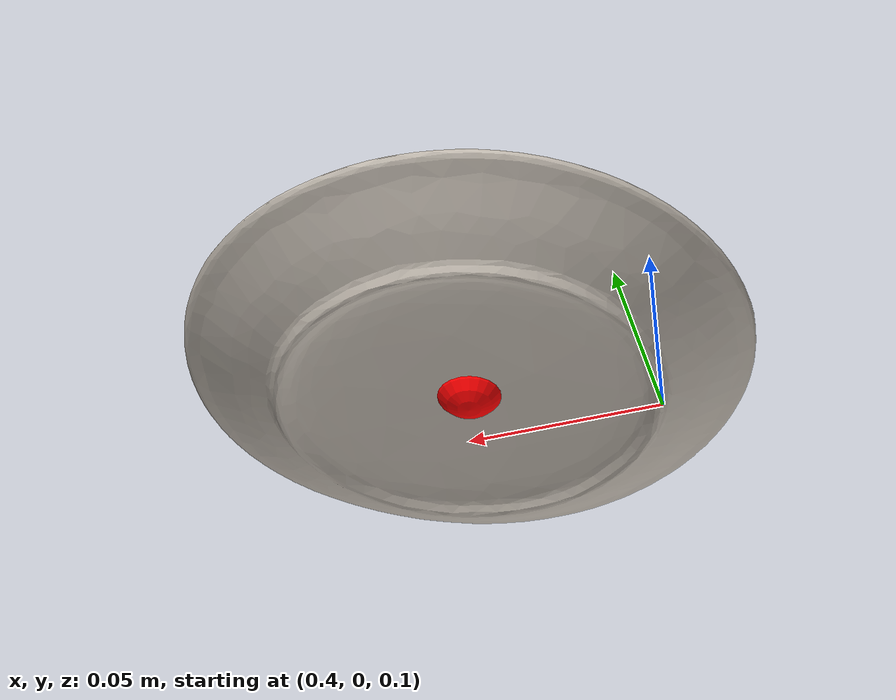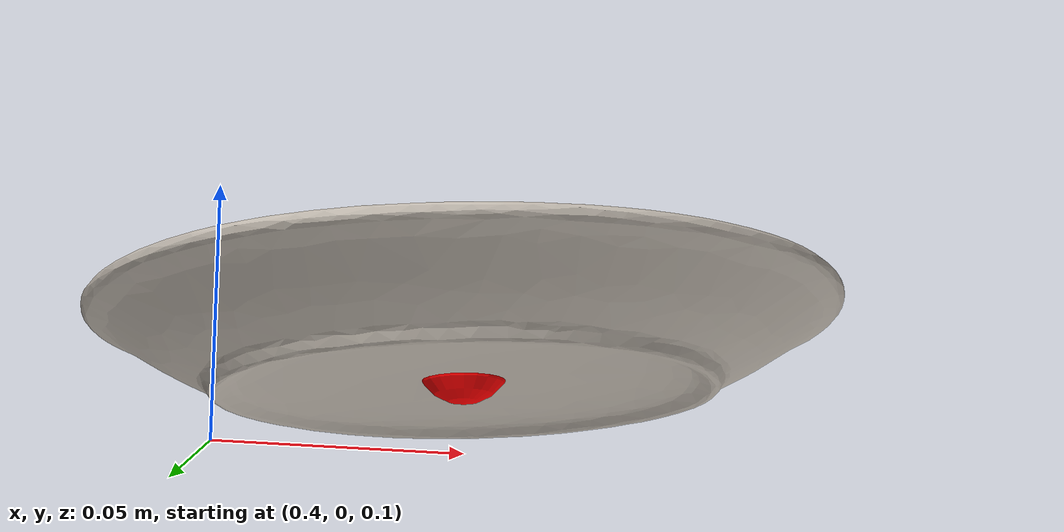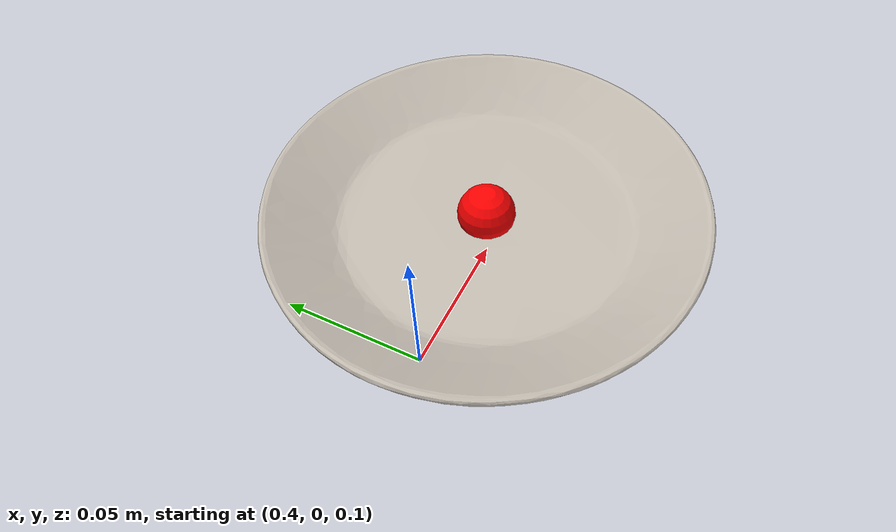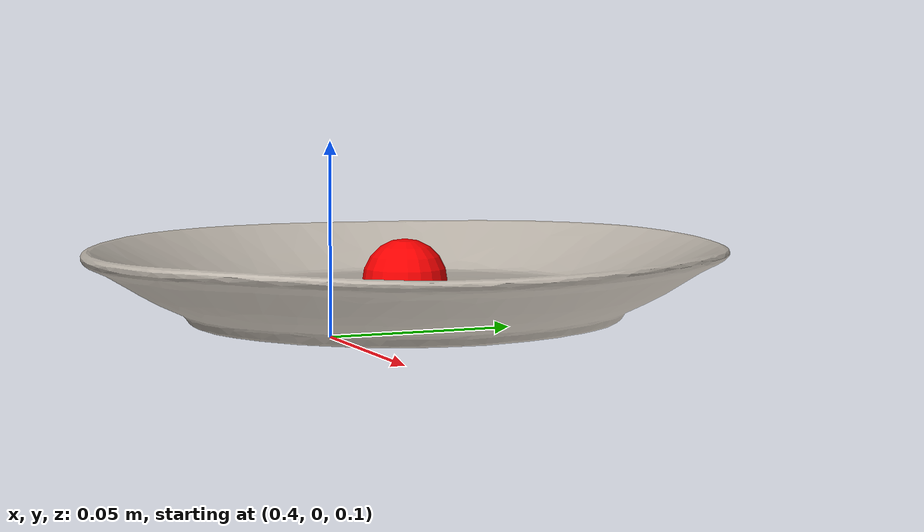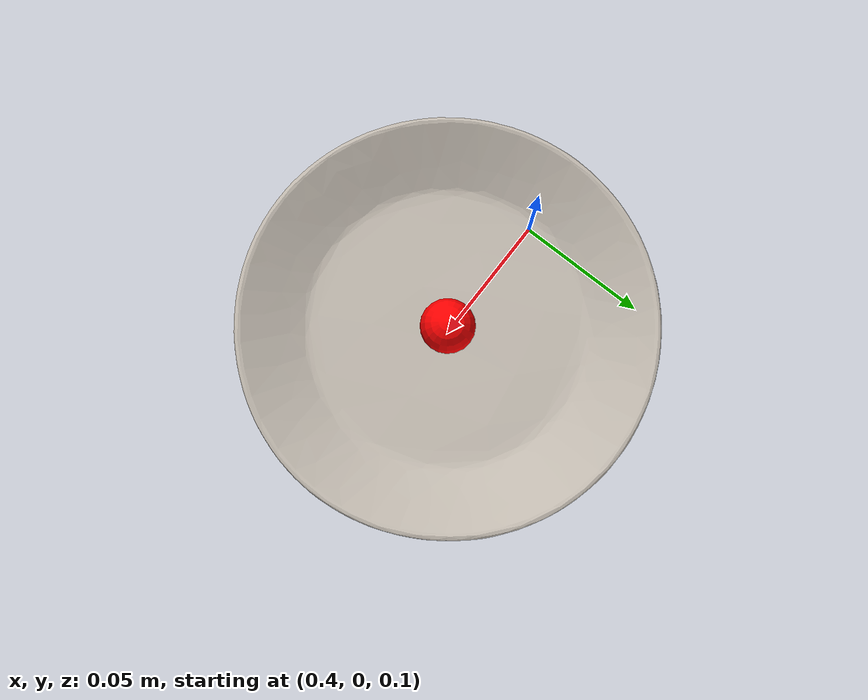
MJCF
<?xml version="1.0"?>
<mujoco model="plate">
  <compiler angle="radian" meshdir="assets" texturedir="assets"/>

  <asset>
    <texture name="plate_tex" type="2d" file="plate_tex.png"/>
    <material name="plate_mat" texture="plate_tex" specular="0.15" shininess="0.15"/>
    <mesh name="plate_vis" file="plate_vis.obj"/>
  </asset>

  <worldbody>
    <body name="plate" pos="0.45 0 0.12">
      <freejoint name="plate_joint"/>
      <inertial pos="-0.00006 -0.00019 0.00118" quat="0.897310 0.004082 -0.006277 -0.441338" mass="0.18000" diaginertia="2.001e-04 2.004e-04 3.919e-04"/>
      <geom name="plate_visual" type="mesh" mesh="plate_vis" material="plate_mat" contype="0" conaffinity="0" group="2" mass="0"/>
      <!-- Analytic cylinder collider (see the header note on why not CoACD). -->
      <geom name="plate_geom" type="cylinder" size="0.075 0.0096" pos="0 0 0" group="3"
            rgba="0.5 0.5 0.5 0.3" mass="0" condim="3" friction="0.5 0.03 0.003"
            contype="1" conaffinity="1" solref="0.01 1"/>
      <site name="object_site" pos="0 0 0" size="0.01" rgba="1 0 0 1"/>
    </body>
  </worldbody>
</mujoco>
